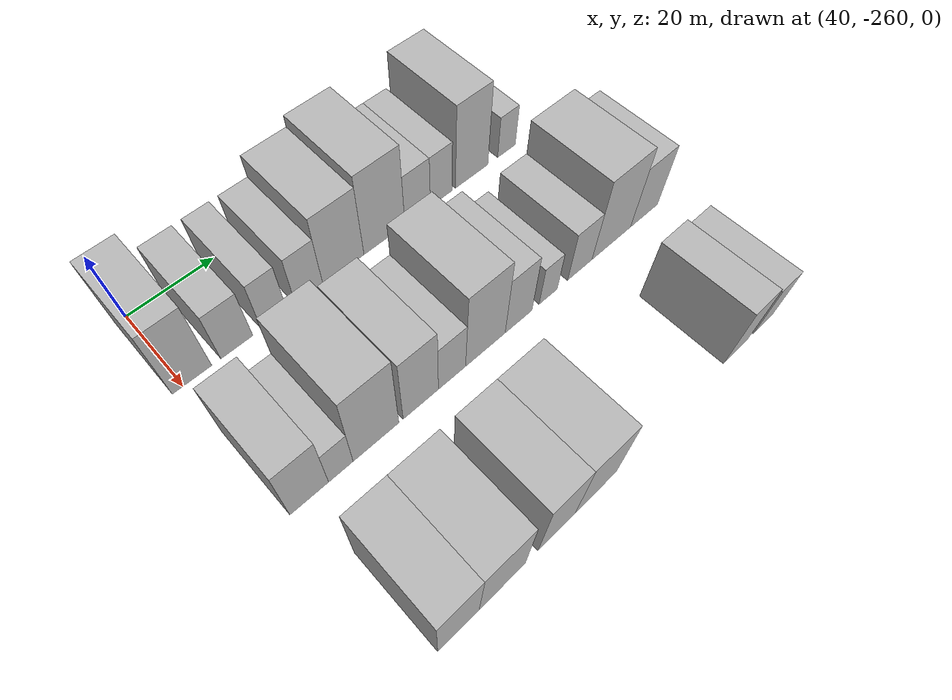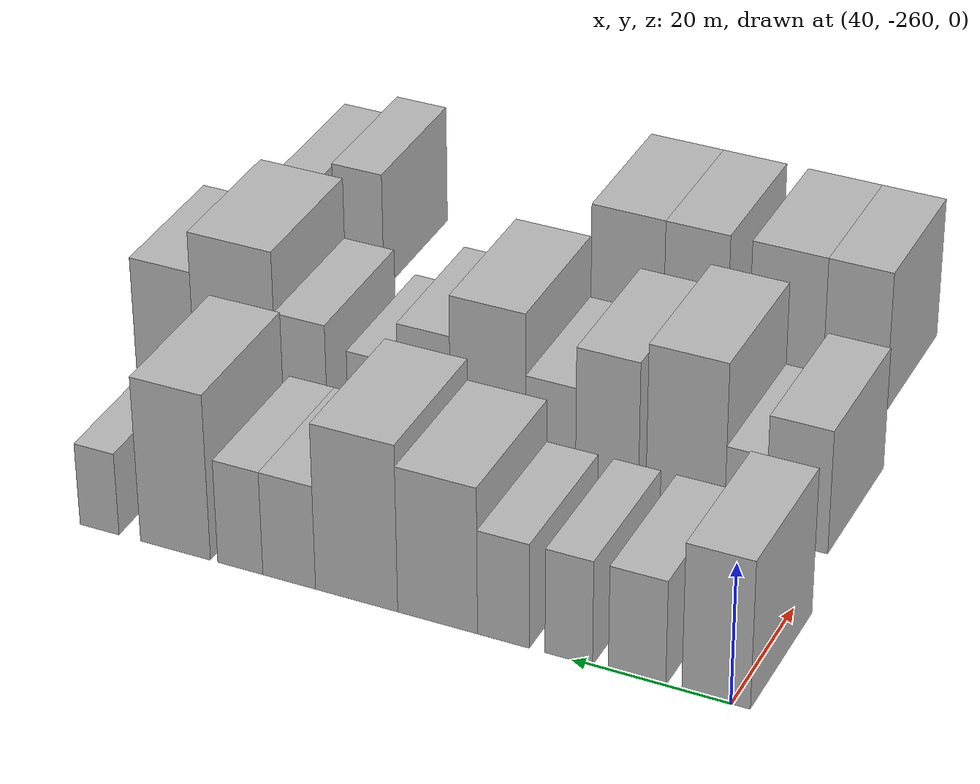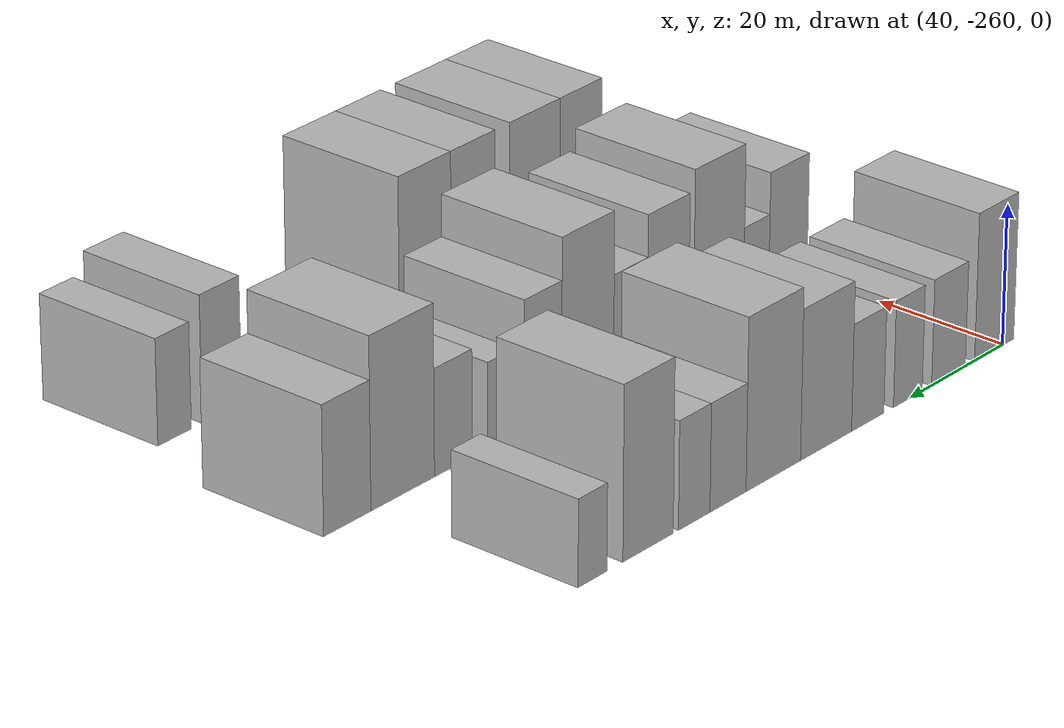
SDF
<sdf version="1.6">
 <world name="default">
  <model name="building_7">
   <static>1</static>
   <pose>50.0000 -258.0364 0 0.000000 0.000000 0.000000</pose>
   <link name="link">
    <pose>0 0 10.50 0 0 0</pose>
    <collision name="collision"><geometry><box><size>20.0000 8.5043 21.0000</size></box></geometry></collision>
    <visual name="visual">
     <cast_shadows>0</cast_shadows>
     <geometry><box><size>20.0000 8.5043 21.0000</size></box></geometry>
     <material>
      <script>
       <uri>model://HANNAS_wall/materials/scripts</uri>
       <uri>model://HANNAS_wall/materials/textures</uri>
       <name>vrc/HANNAS_wall</name>
      </script>
     </material>
    </visual>
   </link>
  </model>
  <model name="building_8">
   <static>1</static>
   <pose>50.0000 -248.1728 0 0.000000 0.000000 0.000000</pose>
   <link name="link">
    <pose>0 0 7.50 0 0 0</pose>
    <collision name="collision"><geometry><box><size>20.0000 7.2229 15.0000</size></box></geometry></collision>
    <visual name="visual">
     <cast_shadows>0</cast_shadows>
     <geometry><box><size>20.0000 7.2229 15.0000</size></box></geometry>
     <material>
      <script>
       <uri>model://HANNAS_wall/materials/scripts</uri>
       <uri>model://HANNAS_wall/materials/textures</uri>
       <name>vrc/HANNAS_wall</name>
      </script>
     </material>
    </visual>
   </link>
  </model>
  <model name="building_9">
   <static>1</static>
   <pose>50.0000 -239.5323 0 0.000000 0.000000 0.000000</pose>
   <link name="link">
    <pose>0 0 7.50 0 0 0</pose>
    <collision name="collision"><geometry><box><size>20.0000 6.0581 15.0000</size></box></geometry></collision>
    <visual name="visual">
     <cast_shadows>0</cast_shadows>
     <geometry><box><size>20.0000 6.0581 15.0000</size></box></geometry>
     <material>
      <script>
       <uri>model://HANNAS_wall/materials/scripts</uri>
       <uri>model://HANNAS_wall/materials/textures</uri>
       <name>vrc/HANNAS_wall</name>
      </script>
     </material>
    </visual>
   </link>
  </model>
  <model name="building_10">
   <static>1</static>
   <pose>50.0000 -231.1441 0 0.000000 0.000000 0.000000</pose>
   <link name="link">
    <pose>0 0 7.50 0 0 0</pose>
    <collision name="collision"><geometry><box><size>20.0000 6.7183 15.0000</size></box></geometry></collision>
    <visual name="visual">
     <cast_shadows>0</cast_shadows>
     <geometry><box><size>20.0000 6.7183 15.0000</size></box></geometry>
     <material>
      <script>
       <uri>model://HANNAS_wall/materials/scripts</uri>
       <uri>model://HANNAS_wall/materials/textures</uri>
       <name>vrc/HANNAS_wall</name>
      </script>
     </material>
    </visual>
   </link>
  </model>
  <model name="building_11">
   <static>1</static>
   <pose>50.0000 -222.5589 0 0.000000 0.000000 0.000000</pose>
   <link name="link">
    <pose>0 0 10.50 0 0 0</pose>
    <collision name="collision"><geometry><box><size>20.0000 10.4522 21.0000</size></box></geometry></collision>
    <visual name="visual">
     <cast_shadows>0</cast_shadows>
     <geometry><box><size>20.0000 10.4522 21.0000</size></box></geometry>
     <material>
      <script>
       <uri>model://HANNAS_wall/materials/scripts</uri>
       <uri>model://HANNAS_wall/materials/textures</uri>
       <name>vrc/HANNAS_wall</name>
      </script>
     </material>
    </visual>
   </link>
  </model>
  <model name="building_12">
   <static>1</static>
   <pose>50.0000 -211.8598 0 0.000000 0.000000 0.000000</pose>
   <link name="link">
    <pose>0 0 12.00 0 0 0</pose>
    <collision name="collision"><geometry><box><size>20.0000 10.9460 24.0000</size></box></geometry></collision>
    <visual name="visual">
     <cast_shadows>0</cast_shadows>
     <geometry><box><size>20.0000 10.9460 24.0000</size></box></geometry>
     <material>
      <script>
       <uri>model://HANNAS_wall/materials/scripts</uri>
       <uri>model://HANNAS_wall/materials/textures</uri>
       <name>vrc/HANNAS_wall</name>
      </script>
     </material>
    </visual>
   </link>
  </model>
  <model name="building_13">
   <static>1</static>
   <pose>50.0000 -202.8306 0 0.000000 0.000000 0.000000</pose>
   <link name="link">
    <pose>0 0 7.50 0 0 0</pose>
    <collision name="collision"><geometry><box><size>20.0000 7.1125 15.0000</size></box></geometry></collision>
    <visual name="visual">
     <cast_shadows>0</cast_shadows>
     <geometry><box><size>20.0000 7.1125 15.0000</size></box></geometry>
     <material>
      <script>
       <uri>model://HANNAS_wall/materials/scripts</uri>
       <uri>model://HANNAS_wall/materials/textures</uri>
       <name>vrc/HANNAS_wall</name>
      </script>
     </material>
    </visual>
   </link>
  </model>
  <model name="building_14">
   <static>1</static>
   <pose>50.0000 -196.1924 0 0.000000 0.000000 0.000000</pose>
   <link name="link">
    <pose>0 0 7.50 0 0 0</pose>
    <collision name="collision"><geometry><box><size>20.0000 6.1640 15.0000</size></box></geometry></collision>
    <visual name="visual">
     <cast_shadows>0</cast_shadows>
     <geometry><box><size>20.0000 6.1640 15.0000</size></box></geometry>
     <material>
      <script>
       <uri>model://HANNAS_wall/materials/scripts</uri>
       <uri>model://HANNAS_wall/materials/textures</uri>
       <name>vrc/HANNAS_wall</name>
      </script>
     </material>
    </visual>
   </link>
  </model>
  <model name="building_15">
   <static>1</static>
   <pose>50.0000 -187.2749 0 0.000000 0.000000 0.000000</pose>
   <link name="link">
    <pose>0 0 12.00 0 0 0</pose>
    <collision name="collision"><geometry><box><size>20.0000 9.6709 24.0000</size></box></geometry></collision>
    <visual name="visual">
     <cast_shadows>0</cast_shadows>
     <geometry><box><size>20.0000 9.6709 24.0000</size></box></geometry>
     <material>
      <script>
       <uri>model://HANNAS_wall/materials/scripts</uri>
       <uri>model://HANNAS_wall/materials/textures</uri>
       <name>vrc/HANNAS_wall</name>
      </script>
     </material>
    </visual>
   </link>
  </model>
  <model name="building_16">
   <static>1</static>
   <pose>50.0000 -176.7070 0 0.000000 0.000000 0.000000</pose>
   <link name="link">
    <pose>0 0 6.00 0 0 0</pose>
    <collision name="collision"><geometry><box><size>20.0000 5.4650 12.0000</size></box></geometry></collision>
    <visual name="visual">
     <cast_shadows>0</cast_shadows>
     <geometry><box><size>20.0000 5.4650 12.0000</size></box></geometry>
     <material>
      <script>
       <uri>model://HANNAS_wall/materials/scripts</uri>
       <uri>model://HANNAS_wall/materials/textures</uri>
       <name>vrc/HANNAS_wall</name>
      </script>
     </material>
    </visual>
   </link>
  </model>
  <model name="building_74">
   <static>1</static>
   <pose>82.0000 -255.7313 0 0.000000 0.000000 0.000000</pose>
   <link name="link">
    <pose>0 0 9.00 0 0 0</pose>
    <collision name="collision"><geometry><box><size>20.0000 8.1895 18.0000</size></box></geometry></collision>
    <visual name="visual">
     <cast_shadows>0</cast_shadows>
     <geometry><box><size>20.0000 8.1895 18.0000</size></box></geometry>
     <material>
      <script>
       <uri>model://HANNAS_wall/materials/scripts</uri>
       <uri>model://HANNAS_wall/materials/textures</uri>
       <name>vrc/HANNAS_wall</name>
      </script>
     </material>
    </visual>
   </link>
  </model>
  <model name="building_75">
   <static>1</static>
   <pose>82.0000 -248.9600 0 0.000000 0.000000 0.000000</pose>
   <link name="link">
    <pose>0 0 6.00 0 0 0</pose>
    <collision name="collision"><geometry><box><size>20.0000 5.3530 12.0000</size></box></geometry></collision>
    <visual name="visual">
     <cast_shadows>0</cast_shadows>
     <geometry><box><size>20.0000 5.3530 12.0000</size></box></geometry>
     <material>
      <script>
       <uri>model://HANNAS_wall/materials/scripts</uri>
       <uri>model://HANNAS_wall/materials/textures</uri>
       <name>vrc/HANNAS_wall</name>
      </script>
     </material>
    </visual>
   </link>
  </model>
  <model name="building_76">
   <static>1</static>
   <pose>82.0000 -241.0611 0 0.000000 0.000000 0.000000</pose>
   <link name="link">
    <pose>0 0 12.00 0 0 0</pose>
    <collision name="collision"><geometry><box><size>20.0000 10.4449 24.0000</size></box></geometry></collision>
    <visual name="visual">
     <cast_shadows>0</cast_shadows>
     <geometry><box><size>20.0000 10.4449 24.0000</size></box></geometry>
     <material>
      <script>
       <uri>model://HANNAS_wall/materials/scripts</uri>
       <uri>model://HANNAS_wall/materials/textures</uri>
       <name>vrc/HANNAS_wall</name>
      </script>
     </material>
    </visual>
   </link>
  </model>
  <model name="building_77">
   <static>1</static>
   <pose>82.0000 -230.6010 0 0.000000 0.000000 0.000000</pose>
   <link name="link">
    <pose>0 0 10.50 0 0 0</pose>
    <collision name="collision"><geometry><box><size>20.0000 8.4752 21.0000</size></box></geometry></collision>
    <visual name="visual">
     <cast_shadows>0</cast_shadows>
     <geometry><box><size>20.0000 8.4752 21.0000</size></box></geometry>
     <material>
      <script>
       <uri>model://HANNAS_wall/materials/scripts</uri>
       <uri>model://HANNAS_wall/materials/textures</uri>
       <name>vrc/HANNAS_wall</name>
      </script>
     </material>
    </visual>
   </link>
  </model>
  <model name="building_78">
   <static>1</static>
   <pose>82.0000 -222.9612 0 0.000000 0.000000 0.000000</pose>
   <link name="link">
    <pose>0 0 7.50 0 0 0</pose>
    <collision name="collision"><geometry><box><size>20.0000 6.8045 15.0000</size></box></geometry></collision>
    <visual name="visual">
     <cast_shadows>0</cast_shadows>
     <geometry><box><size>20.0000 6.8045 15.0000</size></box></geometry>
     <material>
      <script>
       <uri>model://HANNAS_wall/materials/scripts</uri>
       <uri>model://HANNAS_wall/materials/textures</uri>
       <name>vrc/HANNAS_wall</name>
      </script>
     </material>
    </visual>
   </link>
  </model>
  <model name="building_79">
   <static>1</static>
   <pose>82.0000 -214.3884 0 0.000000 0.000000 0.000000</pose>
   <link name="link">
    <pose>0 0 12.00 0 0 0</pose>
    <collision name="collision"><geometry><box><size>20.0000 10.3412 24.0000</size></box></geometry></collision>
    <visual name="visual">
     <cast_shadows>0</cast_shadows>
     <geometry><box><size>20.0000 10.3412 24.0000</size></box></geometry>
     <material>
      <script>
       <uri>model://HANNAS_wall/materials/scripts</uri>
       <uri>model://HANNAS_wall/materials/textures</uri>
       <name>vrc/HANNAS_wall</name>
      </script>
     </material>
    </visual>
   </link>
  </model>
  <model name="building_80">
   <static>1</static>
   <pose>82.0000 -205.5677 0 0.000000 0.000000 0.000000</pose>
   <link name="link">
    <pose>0 0 9.00 0 0 0</pose>
    <collision name="collision"><geometry><box><size>20.0000 7.3002 18.0000</size></box></geometry></collision>
    <visual name="visual">
     <cast_shadows>0</cast_shadows>
     <geometry><box><size>20.0000 7.3002 18.0000</size></box></geometry>
     <material>
      <script>
       <uri>model://HANNAS_wall/materials/scripts</uri>
       <uri>model://HANNAS_wall/materials/textures</uri>
       <name>vrc/HANNAS_wall</name>
      </script>
     </material>
    </visual>
   </link>
  </model>
  <model name="building_81">
   <static>1</static>
   <pose>82.0000 -197.3624 0 0.000000 0.000000 0.000000</pose>
   <link name="link">
    <pose>0 0 6.00 0 0 0</pose>
    <collision name="collision"><geometry><box><size>20.0000 5.1103 12.0000</size></box></geometry></collision>
    <visual name="visual">
     <cast_shadows>0</cast_shadows>
     <geometry><box><size>20.0000 5.1103 12.0000</size></box></geometry>
     <material>
      <script>
       <uri>model://HANNAS_wall/materials/scripts</uri>
       <uri>model://HANNAS_wall/materials/textures</uri>
       <name>vrc/HANNAS_wall</name>
      </script>
     </material>
    </visual>
   </link>
  </model>
  <model name="building_82">
   <static>1</static>
   <pose>82.0000 -188.2093 0 0.000000 0.000000 0.000000</pose>
   <link name="link">
    <pose>0 0 7.50 0 0 0</pose>
    <collision name="collision"><geometry><box><size>20.0000 7.1959 15.0000</size></box></geometry></collision>
    <visual name="visual">
     <cast_shadows>0</cast_shadows>
     <geometry><box><size>20.0000 7.1959 15.0000</size></box></geometry>
     <material>
      <script>
       <uri>model://HANNAS_wall/materials/scripts</uri>
       <uri>model://HANNAS_wall/materials/textures</uri>
       <name>vrc/HANNAS_wall</name>
      </script>
     </material>
    </visual>
   </link>
  </model>
  <model name="building_83">
   <static>1</static>
   <pose>82.0000 -178.6622 0 0.000000 0.000000 0.000000</pose>
   <link name="link">
    <pose>0 0 12.00 0 0 0</pose>
    <collision name="collision"><geometry><box><size>20.0000 11.8983 24.0000</size></box></geometry></collision>
    <visual name="visual">
     <cast_shadows>0</cast_shadows>
     <geometry><box><size>20.0000 11.8983 24.0000</size></box></geometry>
     <material>
      <script>
       <uri>model://HANNAS_wall/materials/scripts</uri>
       <uri>model://HANNAS_wall/materials/textures</uri>
       <name>vrc/HANNAS_wall</name>
      </script>
     </material>
    </visual>
   </link>
  </model>
  <model name="building_84">
   <static>1</static>
   <pose>82.0000 -168.3595 0 0.000000 0.000000 0.000000</pose>
   <link name="link">
    <pose>0 0 9.00 0 0 0</pose>
    <collision name="collision"><geometry><box><size>20.0000 8.7071 18.0000</size></box></geometry></collision>
    <visual name="visual">
     <cast_shadows>0</cast_shadows>
     <geometry><box><size>20.0000 8.7071 18.0000</size></box></geometry>
     <material>
      <script>
       <uri>model://HANNAS_wall/materials/scripts</uri>
       <uri>model://HANNAS_wall/materials/textures</uri>
       <name>vrc/HANNAS_wall</name>
      </script>
     </material>
    </visual>
   </link>
  </model>
  <model name="building_151">
   <static>1</static>
   <pose>114.0000 -251.4647 0 0.000000 0.000000 0.000000</pose>
   <link name="link">
    <pose>0 0 10.50 0 0 0</pose>
    <collision name="collision"><geometry><box><size>20.0000 8.7561 21.0000</size></box></geometry></collision>
    <visual name="visual">
     <cast_shadows>0</cast_shadows>
     <geometry><box><size>20.0000 8.7561 21.0000</size></box></geometry>
     <material>
      <script>
       <uri>model://HANNAS_wall/materials/scripts</uri>
       <uri>model://HANNAS_wall/materials/textures</uri>
       <name>vrc/HANNAS_wall</name>
      </script>
     </material>
    </visual>
   </link>
  </model>
  <model name="building_152">
   <static>1</static>
   <pose>114.0000 -241.9400 0 0.000000 0.000000 0.000000</pose>
   <link name="link">
    <pose>0 0 10.50 0 0 0</pose>
    <collision name="collision"><geometry><box><size>20.0000 10.2934 21.0000</size></box></geometry></collision>
    <visual name="visual">
     <cast_shadows>0</cast_shadows>
     <geometry><box><size>20.0000 10.2934 21.0000</size></box></geometry>
     <material>
      <script>
       <uri>model://HANNAS_wall/materials/scripts</uri>
       <uri>model://HANNAS_wall/materials/textures</uri>
       <name>vrc/HANNAS_wall</name>
      </script>
     </material>
    </visual>
   </link>
  </model>
  <model name="building_153">
   <static>1</static>
   <pose>114.0000 -229.3231 0 0.000000 0.000000 0.000000</pose>
   <link name="link">
    <pose>0 0 10.50 0 0 0</pose>
    <collision name="collision"><geometry><box><size>20.0000 8.9403 21.0000</size></box></geometry></collision>
    <visual name="visual">
     <cast_shadows>0</cast_shadows>
     <geometry><box><size>20.0000 8.9403 21.0000</size></box></geometry>
     <material>
      <script>
       <uri>model://HANNAS_wall/materials/scripts</uri>
       <uri>model://HANNAS_wall/materials/textures</uri>
       <name>vrc/HANNAS_wall</name>
      </script>
     </material>
    </visual>
   </link>
  </model>
  <model name="building_154">
   <static>1</static>
   <pose>114.0000 -219.6781 0 0.000000 0.000000 0.000000</pose>
   <link name="link">
    <pose>0 0 10.50 0 0 0</pose>
    <collision name="collision"><geometry><box><size>20.0000 10.3498 21.0000</size></box></geometry></collision>
    <visual name="visual">
     <cast_shadows>0</cast_shadows>
     <geometry><box><size>20.0000 10.3498 21.0000</size></box></geometry>
     <material>
      <script>
       <uri>model://HANNAS_wall/materials/scripts</uri>
       <uri>model://HANNAS_wall/materials/textures</uri>
       <name>vrc/HANNAS_wall</name>
      </script>
     </material>
    </visual>
   </link>
  </model>
  <model name="building_155">
   <static>1</static>
   <pose>114.0000 -180.4698 0 0.000000 0.000000 0.000000</pose>
   <link name="link">
    <pose>0 0 9.00 0 0 0</pose>
    <collision name="collision"><geometry><box><size>20.0000 7.3556 18.0000</size></box></geometry></collision>
    <visual name="visual">
     <cast_shadows>0</cast_shadows>
     <geometry><box><size>20.0000 7.3556 18.0000</size></box></geometry>
     <material>
      <script>
       <uri>model://HANNAS_wall/materials/scripts</uri>
       <uri>model://HANNAS_wall/materials/textures</uri>
       <name>vrc/HANNAS_wall</name>
      </script>
     </material>
    </visual>
   </link>
  </model>
  <model name="building_156">
   <static>1</static>
   <pose>114.0000 -171.7160 0 0.000000 0.000000 0.000000</pose>
   <link name="link">
    <pose>0 0 7.50 0 0 0</pose>
    <collision name="collision"><geometry><box><size>20.0000 6.1519 15.0000</size></box></geometry></collision>
    <visual name="visual">
     <cast_shadows>0</cast_shadows>
     <geometry><box><size>20.0000 6.1519 15.0000</size></box></geometry>
     <material>
      <script>
       <uri>model://HANNAS_wall/materials/scripts</uri>
       <uri>model://HANNAS_wall/materials/textures</uri>
       <name>vrc/HANNAS_wall</name>
      </script>
     </material>
    </visual>
   </link>
  </model>
 </world>
</sdf>
